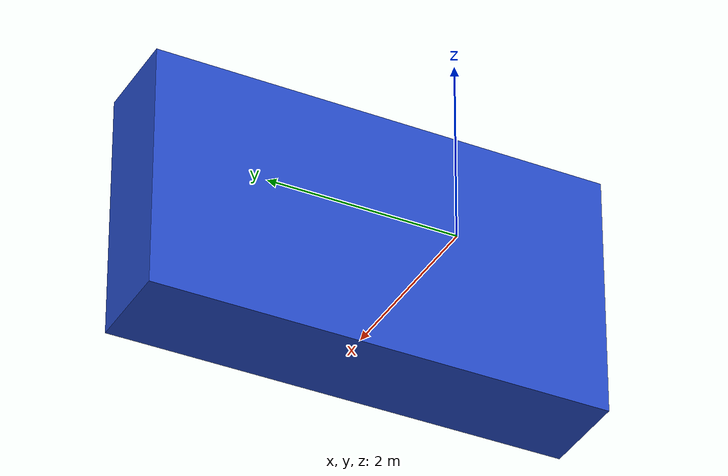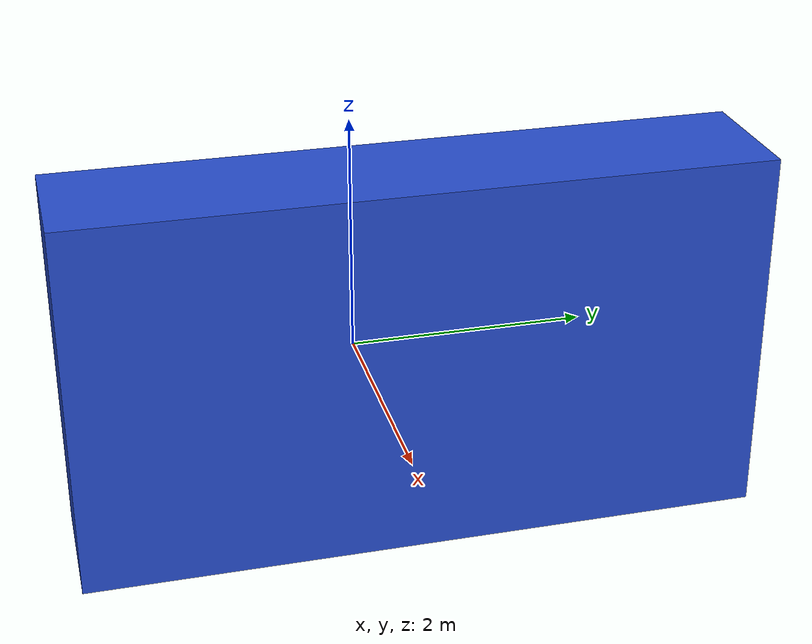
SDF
<sdf version='1.6'>
  <model name='simple_box'>
    <link name='my_box'>
      <pose frame=''>0 0 0 0 -0 0</pose>
      <inertial>
        <pose frame=''>2 0 0 0 -0 0</pose>
        <mass>1</mass>
        <inertia>
          <ixx>1</ixx>
          <ixy>0</ixy>
          <ixz>0</ixz>
          <iyy>100</iyy>
          <iyz>0</iyz>
          <izz>1</izz>
        </inertia>
      </inertial>
      <collision name='my_box_collision'>
        <pose frame=''>2 0 1 0 -0 0</pose>
        <geometry>
          <box>
            <size>1 5 2.75</size>
          </box>
        </geometry>
        <surface>
          <contact>
            <ode/>
          </contact>
          <friction>
            <ode/>
          </friction>
        </surface>
      </collision>
      <visual name='my_box_visual'>
        <pose frame=''>2 0 1 0 -0 0</pose>
        <geometry>
          <box>
            <size>1 5 2.75</size>
          </box>
        </geometry>
        <material>
          <script>
            <name>Gazebo/Blue</name>
            <uri>file://media/materials/scripts/gazebo.material</uri>
          </script>
        </material>
      </visual>
      <gravity>1</gravity>
      <velocity_decay/>
    </link>
  </model>
</sdf>
